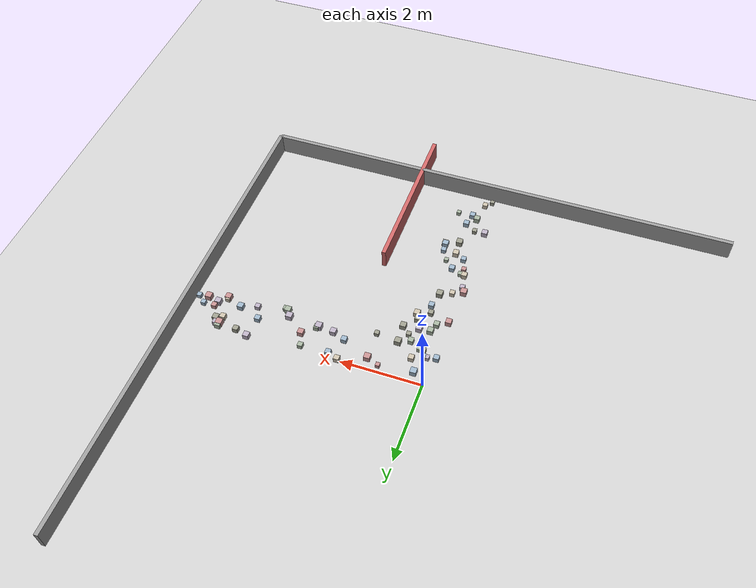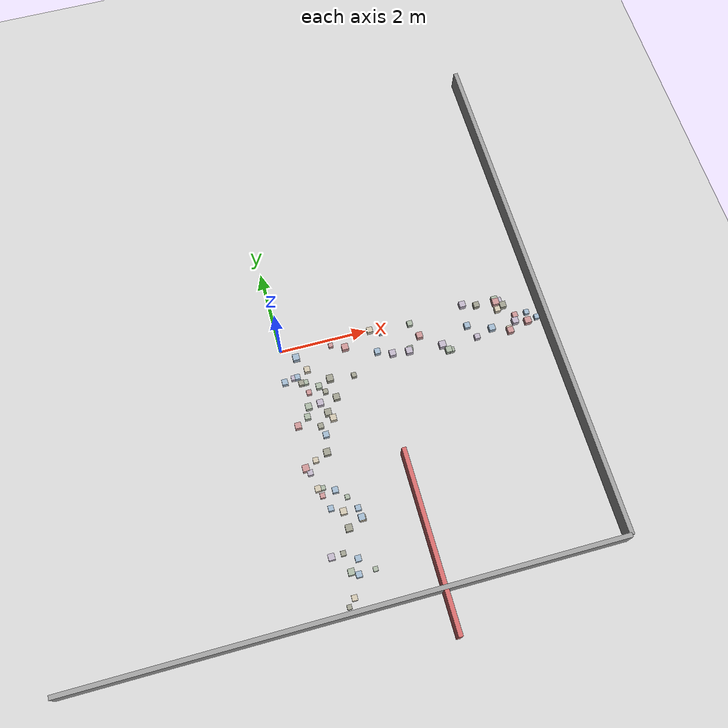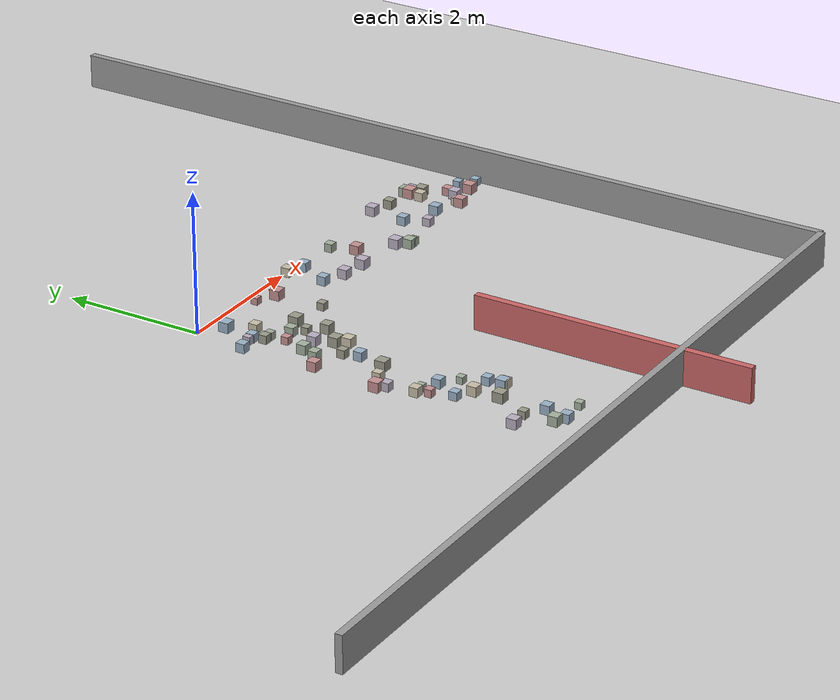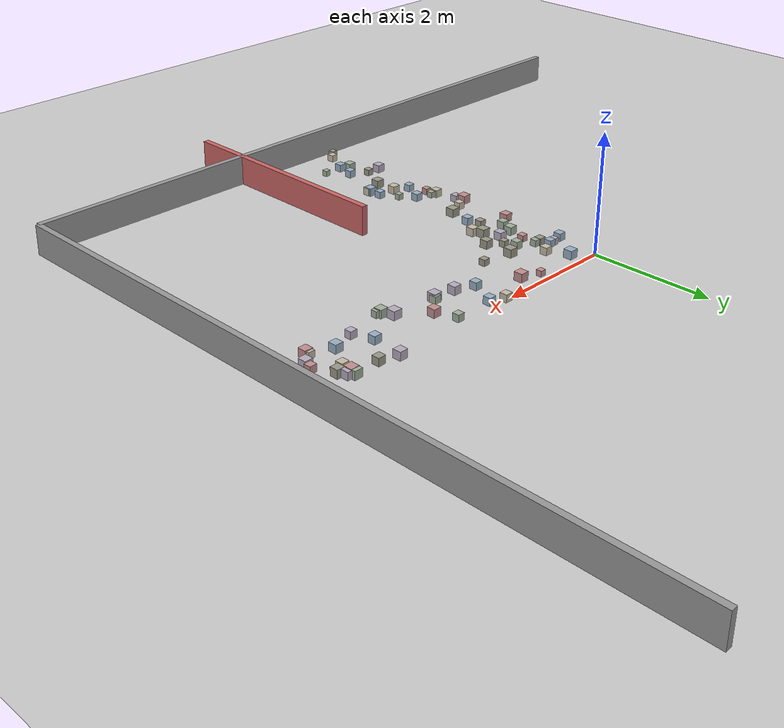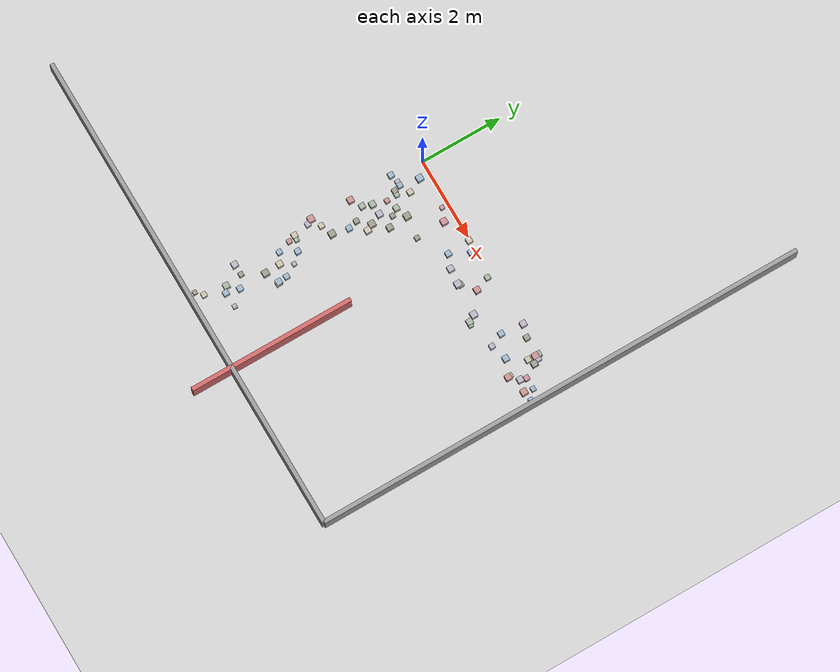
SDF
<sdf version="1.6">
 <world name="small_maze_world">
  <include><uri>model://ground_plane</uri></include>
  <include><uri>model://sun</uri></include>
  <model name="wall_south">
   <static>true</static>
   <pose>0 -6 0.25 0 0 0</pose>
   <link name="link">
    <collision name="collision"><geometry><box><size>12 0.1 0.5</size></box></geometry></collision>
    <visual name="visual">
     <geometry><box><size>12 0.1 0.5</size></box></geometry>
     <material><ambient>0.6 0.6 0.6 1</ambient></material>
    </visual>
   </link>
  </model>
  <model name="wall_east">
   <static>true</static>
   <pose>6 0 0.25 0 0 0</pose>
   <link name="link">
    <collision name="collision"><geometry><box><size>0.1 12 0.5</size></box></geometry></collision>
    <visual name="visual">
     <geometry><box><size>0.1 12 0.5</size></box></geometry>
     <material><ambient>0.6 0.6 0.6 1</ambient></material>
    </visual>
   </link>
  </model>
  <model name="maze_wall_2">
   <static>true</static>
   <pose>2 -5 0.25 0 0 1.5708</pose>
   <link name="link">
    <collision name="collision"><geometry><box><size>4 0.1 0.5</size></box></geometry></collision>
    <visual name="visual">
     <geometry><box><size>4 0.1 0.5</size></box></geometry>
     <material><ambient>0.8 0.4 0.4 1</ambient></material>
    </visual>
   </link>
  </model>
  <model name="box_3">
   <static>false</static>
   <pose>5.06 -0.29 0.05 0 0 0</pose>
   <link name="link">
    <inertial>
     <mass>0.2</mass>
     <inertia><ixx>0.001</ixx><iyy>0.001</iyy><izz>0.001</izz><ixy>0</ixy><ixz>0</ixz><iyz>0</iyz></inertia>
    </inertial>
    <collision name="collision"><geometry><box><size>0.13 0.13 0.13</size></box></geometry></collision>
    <visual name="visual">
     <geometry><box><size>0.13 0.13 0.13</size></box></geometry>
     <material><ambient>0.78 0.74 0.66 1</ambient><diffuse>0.78 0.74 0.66 1</diffuse></material>
    </visual>
   </link>
  </model>
  <model name="box_10">
   <static>false</static>
   <pose>0.47 -4.93 0.05 0 0 0</pose>
   <link name="link">
    <inertial>
     <mass>0.2</mass>
     <inertia><ixx>0.001</ixx><iyy>0.001</iyy><izz>0.001</izz><ixy>0</ixy><ixz>0</ixz><iyz>0</iyz></inertia>
    </inertial>
    <collision name="collision"><geometry><box><size>0.13 0.13 0.13</size></box></geometry></collision>
    <visual name="visual">
     <geometry><box><size>0.13 0.13 0.13</size></box></geometry>
     <material><ambient>0.6 0.69 0.77 1</ambient><diffuse>0.6 0.69 0.77 1</diffuse></material>
    </visual>
   </link>
  </model>
  <model name="box_14">
   <static>false</static>
   <pose>-0.06 -4.76 0.05 0 0 0</pose>
   <link name="link">
    <inertial>
     <mass>0.2</mass>
     <inertia><ixx>0.001</ixx><iyy>0.001</iyy><izz>0.001</izz><ixy>0</ixy><ixz>0</ixz><iyz>0</iyz></inertia>
    </inertial>
    <collision name="collision"><geometry><box><size>0.14 0.14 0.14</size></box></geometry></collision>
    <visual name="visual">
     <geometry><box><size>0.14 0.14 0.14</size></box></geometry>
     <material><ambient>0.72 0.68 0.75 1</ambient><diffuse>0.72 0.68 0.75 1</diffuse></material>
    </visual>
   </link>
  </model>
  <model name="box_21">
   <static>false</static>
   <pose>4.79 -0.7 0.05 0 0 0</pose>
   <link name="link">
    <inertial>
     <mass>0.2</mass>
     <inertia><ixx>0.001</ixx><iyy>0.001</iyy><izz>0.001</izz><ixy>0</ixy><ixz>0</ixz><iyz>0</iyz></inertia>
    </inertial>
    <collision name="collision"><geometry><box><size>0.14 0.14 0.14</size></box></geometry></collision>
    <visual name="visual">
     <geometry><box><size>0.14 0.14 0.14</size></box></geometry>
     <material><ambient>0.6 0.69 0.77 1</ambient><diffuse>0.6 0.69 0.77 1</diffuse></material>
    </visual>
   </link>
  </model>
  <model name="box_27">
   <static>false</static>
   <pose>0.14 -2.67 0.05 0 0 0</pose>
   <link name="link">
    <inertial>
     <mass>0.2</mass>
     <inertia><ixx>0.001</ixx><iyy>0.001</iyy><izz>0.001</izz><ixy>0</ixy><ixz>0</ixz><iyz>0</iyz></inertia>
    </inertial>
    <collision name="collision"><geometry><box><size>0.12 0.12 0.12</size></box></geometry></collision>
    <visual name="visual">
     <geometry><box><size>0.12 0.12 0.12</size></box></geometry>
     <material><ambient>0.78 0.74 0.66 1</ambient><diffuse>0.78 0.74 0.66 1</diffuse></material>
    </visual>
   </link>
  </model>
  <model name="box_29">
   <static>false</static>
   <pose>4.26 -0.5 0.05 0 0 0</pose>
   <link name="link">
    <inertial>
     <mass>0.2</mass>
     <inertia><ixx>0.001</ixx><iyy>0.001</iyy><izz>0.001</izz><ixy>0</ixy><ixz>0</ixz><iyz>0</iyz></inertia>
    </inertial>
    <collision name="collision"><geometry><box><size>0.13 0.13 0.13</size></box></geometry></collision>
    <visual name="visual">
     <geometry><box><size>0.13 0.13 0.13</size></box></geometry>
     <material><ambient>0.6 0.69 0.77 1</ambient><diffuse>0.6 0.69 0.77 1</diffuse></material>
    </visual>
   </link>
  </model>
  <model name="box_34">
   <static>false</static>
   <pose>0.45 -4.27 0.05 0 0 0</pose>
   <link name="link">
    <inertial>
     <mass>0.2</mass>
     <inertia><ixx>0.001</ixx><iyy>0.001</iyy><izz>0.001</izz><ixy>0</ixy><ixz>0</ixz><iyz>0</iyz></inertia>
    </inertial>
    <collision name="collision"><geometry><box><size>0.15 0.15 0.15</size></box></geometry></collision>
    <visual name="visual">
     <geometry><box><size>0.15 0.15 0.15</size></box></geometry>
     <material><ambient>0.6 0.6 0.54 1</ambient><diffuse>0.6 0.6 0.54 1</diffuse></material>
    </visual>
   </link>
  </model>
  <model name="box_56">
   <static>false</static>
   <pose>3.14 -0.45 0.05 0 0 0</pose>
   <link name="link">
    <inertial>
     <mass>0.2</mass>
     <inertia><ixx>0.001</ixx><iyy>0.001</iyy><izz>0.001</izz><ixy>0</ixy><ixz>0</ixz><iyz>0</iyz></inertia>
    </inertial>
    <collision name="collision"><geometry><box><size>0.14 0.14 0.14</size></box></geometry></collision>
    <visual name="visual">
     <geometry><box><size>0.14 0.14 0.14</size></box></geometry>
     <material><ambient>0.76 0.56 0.56 1</ambient><diffuse>0.76 0.56 0.56 1</diffuse></material>
    </visual>
   </link>
  </model>
  <model name="box_64">
   <static>false</static>
   <pose>0.26 -5.16 0.05 0 0 0</pose>
   <link name="link">
    <inertial>
     <mass>0.2</mass>
     <inertia><ixx>0.001</ixx><iyy>0.001</iyy><izz>0.001</izz><ixy>0</ixy><ixz>0</ixz><iyz>0</iyz></inertia>
    </inertial>
    <collision name="collision"><geometry><box><size>0.14 0.14 0.14</size></box></geometry></collision>
    <visual name="visual">
     <geometry><box><size>0.14 0.14 0.14</size></box></geometry>
     <material><ambient>0.64 0.69 0.62 1</ambient><diffuse>0.64 0.69 0.62 1</diffuse></material>
    </visual>
   </link>
  </model>
  <model name="box_65">
   <static>false</static>
   <pose>0.09 -3.46 0.05 0 0 0</pose>
   <link name="link">
    <inertial>
     <mass>0.2</mass>
     <inertia><ixx>0.001</ixx><iyy>0.001</iyy><izz>0.001</izz><ixy>0</ixy><ixz>0</ixz><iyz>0</iyz></inertia>
    </inertial>
    <collision name="collision"><geometry><box><size>0.11 0.11 0.11</size></box></geometry></collision>
    <visual name="visual">
     <geometry><box><size>0.11 0.11 0.11</size></box></geometry>
     <material><ambient>0.76 0.56 0.56 1</ambient><diffuse>0.76 0.56 0.56 1</diffuse></material>
    </visual>
   </link>
  </model>
  <model name="box_79">
   <static>false</static>
   <pose>5.18 -0.87 0.05 0 0 0</pose>
   <link name="link">
    <inertial>
     <mass>0.2</mass>
     <inertia><ixx>0.001</ixx><iyy>0.001</iyy><izz>0.001</izz><ixy>0</ixy><ixz>0</ixz><iyz>0</iyz></inertia>
    </inertial>
    <collision name="collision"><geometry><box><size>0.14 0.14 0.14</size></box></geometry></collision>
    <visual name="visual">
     <geometry><box><size>0.14 0.14 0.14</size></box></geometry>
     <material><ambient>0.76 0.56 0.56 1</ambient><diffuse>0.76 0.56 0.56 1</diffuse></material>
    </visual>
   </link>
  </model>
  <model name="box_92">
   <static>false</static>
   <pose>1.45 -0.99 0.05 0 0 0</pose>
   <link name="link">
    <inertial>
     <mass>0.2</mass>
     <inertia><ixx>0.001</ixx><iyy>0.001</iyy><izz>0.001</izz><ixy>0</ixy><ixz>0</ixz><iyz>0</iyz></inertia>
    </inertial>
    <collision name="collision"><geometry><box><size>0.11 0.11 0.11</size></box></geometry></collision>
    <visual name="visual">
     <geometry><box><size>0.11 0.11 0.11</size></box></geometry>
     <material><ambient>0.6 0.6 0.54 1</ambient><diffuse>0.6 0.6 0.54 1</diffuse></material>
    </visual>
   </link>
  </model>
  <model name="box_93">
   <static>false</static>
   <pose>0.43 -3.9 0.05 0 0 0</pose>
   <link name="link">
    <inertial>
     <mass>0.2</mass>
     <inertia><ixx>0.001</ixx><iyy>0.001</iyy><izz>0.001</izz><ixy>0</ixy><ixz>0</ixz><iyz>0</iyz></inertia>
    </inertial>
    <collision name="collision"><geometry><box><size>0.14 0.14 0.14</size></box></geometry></collision>
    <visual name="visual">
     <geometry><box><size>0.14 0.14 0.14</size></box></geometry>
     <material><ambient>0.78 0.74 0.66 1</ambient><diffuse>0.78 0.74 0.66 1</diffuse></material>
    </visual>
   </link>
  </model>
  <model name="box_95">
   <static>false</static>
   <pose>-0.08 -0.76 0.05 0 0 0</pose>
   <link name="link">
    <inertial>
     <mass>0.2</mass>
     <inertia><ixx>0.001</ixx><iyy>0.001</iyy><izz>0.001</izz><ixy>0</ixy><ixz>0</ixz><iyz>0</iyz></inertia>
    </inertial>
    <collision name="collision"><geometry><box><size>0.13 0.13 0.13</size></box></geometry></collision>
    <visual name="visual">
     <geometry><box><size>0.13 0.13 0.13</size></box></geometry>
     <material><ambient>0.6 0.69 0.77 1</ambient><diffuse>0.6 0.69 0.77 1</diffuse></material>
    </visual>
   </link>
  </model>
  <model name="box_99">
   <static>false</static>
   <pose>0.67 -1.69 0.05 0 0 0</pose>
   <link name="link">
    <inertial>
     <mass>0.2</mass>
     <inertia><ixx>0.001</ixx><iyy>0.001</iyy><izz>0.001</izz><ixy>0</ixy><ixz>0</ixz><iyz>0</iyz></inertia>
    </inertial>
    <collision name="collision"><geometry><box><size>0.15 0.15 0.15</size></box></geometry></collision>
    <visual name="visual">
     <geometry><box><size>0.15 0.15 0.15</size></box></geometry>
     <material><ambient>0.6 0.6 0.54 1</ambient><diffuse>0.6 0.6 0.54 1</diffuse></material>
    </visual>
   </link>
  </model>
  <model name="box_127">
   <static>false</static>
   <pose>0.38 -1.13 0.05 0 0 0</pose>
   <link name="link">
    <inertial>
     <mass>0.2</mass>
     <inertia><ixx>0.001</ixx><iyy>0.001</iyy><izz>0.001</izz><ixy>0</ixy><ixz>0</ixz><iyz>0</iyz></inertia>
    </inertial>
    <collision name="collision"><geometry><box><size>0.11 0.11 0.11</size></box></geometry></collision>
    <visual name="visual">
     <geometry><box><size>0.11 0.11 0.11</size></box></geometry>
     <material><ambient>0.76 0.56 0.56 1</ambient><diffuse>0.76 0.56 0.56 1</diffuse></material>
    </visual>
   </link>
  </model>
  <model name="box_133">
   <static>false</static>
   <pose>3.01 -0.11 0.05 0 0 0</pose>
   <link name="link">
    <inertial>
     <mass>0.2</mass>
     <inertia><ixx>0.001</ixx><iyy>0.001</iyy><izz>0.001</izz><ixy>0</ixy><ixz>0</ixz><iyz>0</iyz></inertia>
    </inertial>
    <collision name="collision"><geometry><box><size>0.12 0.12 0.12</size></box></geometry></collision>
    <visual name="visual">
     <geometry><box><size>0.12 0.12 0.12</size></box></geometry>
     <material><ambient>0.64 0.69 0.62 1</ambient><diffuse>0.64 0.69 0.62 1</diffuse></material>
    </visual>
   </link>
  </model>
  <model name="box_135">
   <static>false</static>
   <pose>3.75 -0.98 0.05 0 0 0</pose>
   <link name="link">
    <inertial>
     <mass>0.2</mass>
     <inertia><ixx>0.001</ixx><iyy>0.001</iyy><izz>0.001</izz><ixy>0</ixy><ixz>0</ixz><iyz>0</iyz></inertia>
    </inertial>
    <collision name="collision"><geometry><box><size>0.11 0.11 0.11</size></box></geometry></collision>
    <visual name="visual">
     <geometry><box><size>0.11 0.11 0.11</size></box></geometry>
     <material><ambient>0.64 0.69 0.62 1</ambient><diffuse>0.64 0.69 0.62 1</diffuse></material>
    </visual>
   </link>
  </model>
  <model name="box_143">
   <static>false</static>
   <pose>0.94 -1.39 0.05 0 0 0</pose>
   <link name="link">
    <inertial>
     <mass>0.2</mass>
     <inertia><ixx>0.001</ixx><iyy>0.001</iyy><izz>0.001</izz><ixy>0</ixy><ixz>0</ixz><iyz>0</iyz></inertia>
    </inertial>
    <collision name="collision"><geometry><box><size>0.14 0.14 0.14</size></box></geometry></collision>
    <visual name="visual">
     <geometry><box><size>0.14 0.14 0.14</size></box></geometry>
     <material><ambient>0.6 0.6 0.54 1</ambient><diffuse>0.6 0.6 0.54 1</diffuse></material>
    </visual>
   </link>
  </model>
  <model name="box_149">
   <static>false</static>
   <pose>-0.04 -1.82 0.05 0 0 0</pose>
   <link name="link">
    <inertial>
     <mass>0.2</mass>
     <inertia><ixx>0.001</ixx><iyy>0.001</iyy><izz>0.001</izz><ixy>0</ixy><ixz>0</ixz><iyz>0</iyz></inertia>
    </inertial>
    <collision name="collision"><geometry><box><size>0.14 0.14 0.14</size></box></geometry></collision>
    <visual name="visual">
     <geometry><box><size>0.14 0.14 0.14</size></box></geometry>
     <material><ambient>0.76 0.56 0.56 1</ambient><diffuse>0.76 0.56 0.56 1</diffuse></material>
    </visual>
   </link>
  </model>
  <model name="box_164">
   <static>false</static>
   <pose>5.07 -0.04 0.05 0 0 0</pose>
   <link name="link">
    <inertial>
     <mass>0.2</mass>
     <inertia><ixx>0.001</ixx><iyy>0.001</iyy><izz>0.001</izz><ixy>0</ixy><ixz>0</ixz><iyz>0</iyz></inertia>
    </inertial>
    <collision name="collision"><geometry><box><size>0.14 0.14 0.14</size></box></geometry></collision>
    <visual name="visual">
     <geometry><box><size>0.14 0.14 0.14</size></box></geometry>
     <material><ambient>0.64 0.69 0.62 1</ambient><diffuse>0.64 0.69 0.62 1</diffuse></material>
    </visual>
   </link>
  </model>
  <model name="box_169">
   <static>false</static>
   <pose>4.62 -0.06 0.05 0 0 0</pose>
   <link name="link">
    <inertial>
     <mass>0.2</mass>
     <inertia><ixx>0.001</ixx><iyy>0.001</iyy><izz>0.001</izz><ixy>0</ixy><ixz>0</ixz><iyz>0</iyz></inertia>
    </inertial>
    <collision name="collision"><geometry><box><size>0.13 0.13 0.13</size></box></geometry></collision>
    <visual name="visual">
     <geometry><box><size>0.13 0.13 0.13</size></box></geometry>
     <material><ambient>0.6 0.6 0.54 1</ambient><diffuse>0.6 0.6 0.54 1</diffuse></material>
    </visual>
   </link>
  </model>
  <model name="box_170">
   <static>false</static>
   <pose>0.77 -4.12 0.05 0 0 0</pose>
   <link name="link">
    <inertial>
     <mass>0.2</mass>
     <inertia><ixx>0.001</ixx><iyy>0.001</iyy><izz>0.001</izz><ixy>0</ixy><ixz>0</ixz><iyz>0</iyz></inertia>
    </inertial>
    <collision name="collision"><geometry><box><size>0.14 0.14 0.14</size></box></geometry></collision>
    <visual name="visual">
     <geometry><box><size>0.14 0.14 0.14</size></box></geometry>
     <material><ambient>0.6 0.69 0.77 1</ambient><diffuse>0.6 0.69 0.77 1</diffuse></material>
    </visual>
   </link>
  </model>
  <model name="box_173">
   <static>false</static>
   <pose>0.91 -0.93 0.05 0 0 0</pose>
   <link name="link">
    <inertial>
     <mass>0.2</mass>
     <inertia><ixx>0.001</ixx><iyy>0.001</iyy><izz>0.001</izz><ixy>0</ixy><ixz>0</ixz><iyz>0</iyz></inertia>
    </inertial>
    <collision name="collision"><geometry><box><size>0.15 0.15 0.15</size></box></geometry></collision>
    <visual name="visual">
     <geometry><box><size>0.15 0.15 0.15</size></box></geometry>
     <material><ambient>0.6 0.6 0.54 1</ambient><diffuse>0.6 0.6 0.54 1</diffuse></material>
    </visual>
   </link>
  </model>
  <model name="box_179">
   <static>false</static>
   <pose>0.37 -0.88 0.05 0 0 0</pose>
   <link name="link">
    <inertial>
     <mass>0.2</mass>
     <inertia><ixx>0.001</ixx><iyy>0.001</iyy><izz>0.001</izz><ixy>0</ixy><ixz>0</ixz><iyz>0</iyz></inertia>
    </inertial>
    <collision name="collision"><geometry><box><size>0.11 0.11 0.11</size></box></geometry></collision>
    <visual name="visual">
     <geometry><box><size>0.11 0.11 0.11</size></box></geometry>
     <material><ambient>0.64 0.69 0.62 1</ambient><diffuse>0.64 0.69 0.62 1</diffuse></material>
    </visual>
   </link>
  </model>
  <model name="box_182">
   <static>false</static>
   <pose>5.36 -0.67 0.05 0 0 0</pose>
   <link name="link">
    <inertial>
     <mass>0.2</mass>
     <inertia><ixx>0.001</ixx><iyy>0.001</iyy><izz>0.001</izz><ixy>0</ixy><ixz>0</ixz><iyz>0</iyz></inertia>
    </inertial>
    <collision name="collision"><geometry><box><size>0.14 0.14 0.14</size></box></geometry></collision>
    <visual name="visual">
     <geometry><box><size>0.14 0.14 0.14</size></box></geometry>
     <material><ambient>0.72 0.68 0.75 1</ambient><diffuse>0.72 0.68 0.75 1</diffuse></material>
    </visual>
   </link>
  </model>
  <model name="box_187">
   <static>false</static>
   <pose>2.81 -0.75 0.05 0 0 0</pose>
   <link name="link">
    <inertial>
     <mass>0.2</mass>
     <inertia><ixx>0.001</ixx><iyy>0.001</iyy><izz>0.001</izz><ixy>0</ixy><ixz>0</ixz><iyz>0</iyz></inertia>
    </inertial>
    <collision name="collision"><geometry><box><size>0.15 0.15 0.15</size></box></geometry></collision>
    <visual name="visual">
     <geometry><box><size>0.15 0.15 0.15</size></box></geometry>
     <material><ambient>0.72 0.68 0.75 1</ambient><diffuse>0.72 0.68 0.75 1</diffuse></material>
    </visual>
   </link>
  </model>
  <model name="box_191">
   <static>false</static>
   <pose>0.13 -0.71 0.05 0 0 0</pose>
   <link name="link">
    <inertial>
     <mass>0.2</mass>
     <inertia><ixx>0.001</ixx><iyy>0.001</iyy><izz>0.001</izz><ixy>0</ixy><ixz>0</ixz><iyz>0</iyz></inertia>
    </inertial>
    <collision name="collision"><geometry><box><size>0.11 0.11 0.11</size></box></geometry></collision>
    <visual name="visual">
     <geometry><box><size>0.11 0.11 0.11</size></box></geometry>
     <material><ambient>0.72 0.68 0.75 1</ambient><diffuse>0.72 0.68 0.75 1</diffuse></material>
    </visual>
   </link>
  </model>
  <model name="box_197">
   <static>false</static>
   <pose>0.5 -2.17 0.05 0 0 0</pose>
   <link name="link">
    <inertial>
     <mass>0.2</mass>
     <inertia><ixx>0.001</ixx><iyy>0.001</iyy><izz>0.001</izz><ixy>0</ixy><ixz>0</ixz><iyz>0</iyz></inertia>
    </inertial>
    <collision name="collision"><geometry><box><size>0.13 0.13 0.13</size></box></geometry></collision>
    <visual name="visual">
     <geometry><box><size>0.13 0.13 0.13</size></box></geometry>
     <material><ambient>0.6 0.69 0.77 1</ambient><diffuse>0.6 0.69 0.77 1</diffuse></material>
    </visual>
   </link>
  </model>
  <model name="box_204">
   <static>false</static>
   <pose>1.13 -0.16 0.05 0 0 0</pose>
   <link name="link">
    <inertial>
     <mass>0.2</mass>
     <inertia><ixx>0.001</ixx><iyy>0.001</iyy><izz>0.001</izz><ixy>0</ixy><ixz>0</ixz><iyz>0</iyz></inertia>
    </inertial>
    <collision name="collision"><geometry><box><size>0.1 0.1 0.1</size></box></geometry></collision>
    <visual name="visual">
     <geometry><box><size>0.1 0.1 0.1</size></box></geometry>
     <material><ambient>0.76 0.56 0.56 1</ambient><diffuse>0.76 0.56 0.56 1</diffuse></material>
    </visual>
   </link>
  </model>
  <model name="box_222">
   <static>false</static>
   <pose>0.19 -3.77 0.05 0 0 0</pose>
   <link name="link">
    <inertial>
     <mass>0.2</mass>
     <inertia><ixx>0.001</ixx><iyy>0.001</iyy><izz>0.001</izz><ixy>0</ixy><ixz>0</ixz><iyz>0</iyz></inertia>
    </inertial>
    <collision name="collision"><geometry><box><size>0.12 0.12 0.12</size></box></geometry></collision>
    <visual name="visual">
     <geometry><box><size>0.12 0.12 0.12</size></box></geometry>
     <material><ambient>0.6 0.69 0.77 1</ambient><diffuse>0.6 0.69 0.77 1</diffuse></material>
    </visual>
   </link>
  </model>
  <model name="box_225">
   <static>false</static>
   <pose>0.21 -1.67 0.05 0 0 0</pose>
   <link name="link">
    <inertial>
     <mass>0.2</mass>
     <inertia><ixx>0.001</ixx><iyy>0.001</iyy><izz>0.001</izz><ixy>0</ixy><ixz>0</ixz><iyz>0</iyz></inertia>
    </inertial>
    <collision name="collision"><geometry><box><size>0.13 0.13 0.13</size></box></geometry></collision>
    <visual name="visual">
     <geometry><box><size>0.13 0.13 0.13</size></box></geometry>
     <material><ambient>0.64 0.69 0.62 1</ambient><diffuse>0.64 0.69 0.62 1</diffuse></material>
    </visual>
   </link>
  </model>
  <model name="box_230">
   <static>false</static>
   <pose>5.64 -0.74 0.05 0 0 0</pose>
   <link name="link">
    <inertial>
     <mass>0.2</mass>
     <inertia><ixx>0.001</ixx><iyy>0.001</iyy><izz>0.001</izz><ixy>0</ixy><ixz>0</ixz><iyz>0</iyz></inertia>
    </inertial>
    <collision name="collision"><geometry><box><size>0.15 0.15 0.15</size></box></geometry></collision>
    <visual name="visual">
     <geometry><box><size>0.15 0.15 0.15</size></box></geometry>
     <material><ambient>0.76 0.56 0.56 1</ambient><diffuse>0.76 0.56 0.56 1</diffuse></material>
    </visual>
   </link>
  </model>
  <model name="box_231">
   <static>false</static>
   <pose>0.75 -3.91 0.05 0 0 0</pose>
   <link name="link">
    <inertial>
     <mass>0.2</mass>
     <inertia><ixx>0.001</ixx><iyy>0.001</iyy><izz>0.001</izz><ixy>0</ixy><ixz>0</ixz><iyz>0</iyz></inertia>
    </inertial>
    <collision name="collision"><geometry><box><size>0.12 0.12 0.12</size></box></geometry></collision>
    <visual name="visual">
     <geometry><box><size>0.12 0.12 0.12</size></box></geometry>
     <material><ambient>0.6 0.69 0.77 1</ambient><diffuse>0.6 0.69 0.77 1</diffuse></material>
    </visual>
   </link>
  </model>
  <model name="box_236">
   <static>false</static>
   <pose>0.63 -1.04 0.05 0 0 0</pose>
   <link name="link">
    <inertial>
     <mass>0.2</mass>
     <inertia><ixx>0.001</ixx><iyy>0.001</iyy><izz>0.001</izz><ixy>0</ixy><ixz>0</ixz><iyz>0</iyz></inertia>
    </inertial>
    <collision name="collision"><geometry><box><size>0.13 0.13 0.13</size></box></geometry></collision>
    <visual name="visual">
     <geometry><box><size>0.13 0.13 0.13</size></box></geometry>
     <material><ambient>0.64 0.69 0.62 1</ambient><diffuse>0.64 0.69 0.62 1</diffuse></material>
    </visual>
   </link>
  </model>
  <model name="box_239">
   <static>false</static>
   <pose>0.19 -5.68 0.05 0 0 0</pose>
   <link name="link">
    <inertial>
     <mass>0.2</mass>
     <inertia><ixx>0.001</ixx><iyy>0.001</iyy><izz>0.001</izz><ixy>0</ixy><ixz>0</ixz><iyz>0</iyz></inertia>
    </inertial>
    <collision name="collision"><geometry><box><size>0.12 0.12 0.12</size></box></geometry></collision>
    <visual name="visual">
     <geometry><box><size>0.12 0.12 0.12</size></box></geometry>
     <material><ambient>0.78 0.74 0.66 1</ambient><diffuse>0.78 0.74 0.66 1</diffuse></material>
    </visual>
   </link>
  </model>
  <model name="box_242">
   <static>false</static>
   <pose>-0.04 -2.91 0.05 0 0 0</pose>
   <link name="link">
    <inertial>
     <mass>0.2</mass>
     <inertia><ixx>0.001</ixx><iyy>0.001</iyy><izz>0.001</izz><ixy>0</ixy><ixz>0</ixz><iyz>0</iyz></inertia>
    </inertial>
    <collision name="collision"><geometry><box><size>0.12 0.12 0.12</size></box></geometry></collision>
    <visual name="visual">
     <geometry><box><size>0.12 0.12 0.12</size></box></geometry>
     <material><ambient>0.72 0.68 0.75 1</ambient><diffuse>0.72 0.68 0.75 1</diffuse></material>
    </visual>
   </link>
  </model>
  <model name="box_243">
   <static>false</static>
   <pose>2.11 -0.58 0.05 0 0 0</pose>
   <link name="link">
    <inertial>
     <mass>0.2</mass>
     <inertia><ixx>0.001</ixx><iyy>0.001</iyy><izz>0.001</izz><ixy>0</ixy><ixz>0</ixz><iyz>0</iyz></inertia>
    </inertial>
    <collision name="collision"><geometry><box><size>0.13 0.13 0.13</size></box></geometry></collision>
    <visual name="visual">
     <geometry><box><size>0.13 0.13 0.13</size></box></geometry>
     <material><ambient>0.6 0.69 0.77 1</ambient><diffuse>0.6 0.69 0.77 1</diffuse></material>
    </visual>
   </link>
  </model>
  <model name="box_258">
   <static>false</static>
   <pose>0.79 -4.14 0.05 0 0 0</pose>
   <link name="link">
    <inertial>
     <mass>0.2</mass>
     <inertia><ixx>0.001</ixx><iyy>0.001</iyy><izz>0.001</izz><ixy>0</ixy><ixz>0</ixz><iyz>0</iyz></inertia>
    </inertial>
    <collision name="collision"><geometry><box><size>0.13 0.13 0.13</size></box></geometry></collision>
    <visual name="visual">
     <geometry><box><size>0.13 0.13 0.13</size></box></geometry>
     <material><ambient>0.78 0.74 0.66 1</ambient><diffuse>0.78 0.74 0.66 1</diffuse></material>
    </visual>
   </link>
  </model>
  <model name="box_260">
   <static>false</static>
   <pose>4.4 -0.82 0.05 0 0 0</pose>
   <link name="link">
    <inertial>
     <mass>0.2</mass>
     <inertia><ixx>0.001</ixx><iyy>0.001</iyy><izz>0.001</izz><ixy>0</ixy><ixz>0</ixz><iyz>0</iyz></inertia>
    </inertial>
    <collision name="collision"><geometry><box><size>0.12 0.12 0.12</size></box></geometry></collision>
    <visual name="visual">
     <geometry><box><size>0.12 0.12 0.12</size></box></geometry>
     <material><ambient>0.72 0.68 0.75 1</ambient><diffuse>0.72 0.68 0.75 1</diffuse></material>
    </visual>
   </link>
  </model>
  <model name="box_265">
   <static>false</static>
   <pose>5.07 -0.11 0.05 0 0 0</pose>
   <link name="link">
    <inertial>
     <mass>0.2</mass>
     <inertia><ixx>0.001</ixx><iyy>0.001</iyy><izz>0.001</izz><ixy>0</ixy><ixz>0</ixz><iyz>0</iyz></inertia>
    </inertial>
    <collision name="collision"><geometry><box><size>0.15 0.15 0.15</size></box></geometry></collision>
    <visual name="visual">
     <geometry><box><size>0.15 0.15 0.15</size></box></geometry>
     <material><ambient>0.76 0.56 0.56 1</ambient><diffuse>0.76 0.56 0.56 1</diffuse></material>
    </visual>
   </link>
  </model>
  <model name="box_269">
   <static>false</static>
   <pose>3.58 -0.8 0.05 0 0 0</pose>
   <link name="link">
    <inertial>
     <mass>0.2</mass>
     <inertia><ixx>0.001</ixx><iyy>0.001</iyy><izz>0.001</izz><ixy>0</ixy><ixz>0</ixz><iyz>0</iyz></inertia>
    </inertial>
    <collision name="collision"><geometry><box><size>0.15 0.15 0.15</size></box></geometry></collision>
    <visual name="visual">
     <geometry><box><size>0.15 0.15 0.15</size></box></geometry>
     <material><ambient>0.72 0.68 0.75 1</ambient><diffuse>0.72 0.68 0.75 1</diffuse></material>
    </visual>
   </link>
  </model>
  <model name="box_271">
   <static>false</static>
   <pose>0.38 -3.41 0.05 0 0 0</pose>
   <link name="link">
    <inertial>
     <mass>0.2</mass>
     <inertia><ixx>0.001</ixx><iyy>0.001</iyy><izz>0.001</izz><ixy>0</ixy><ixz>0</ixz><iyz>0</iyz></inertia>
    </inertial>
    <collision name="collision"><geometry><box><size>0.13 0.13 0.13</size></box></geometry></collision>
    <visual name="visual">
     <geometry><box><size>0.13 0.13 0.13</size></box></geometry>
     <material><ambient>0.6 0.69 0.77 1</ambient><diffuse>0.6 0.69 0.77 1</diffuse></material>
    </visual>
   </link>
  </model>
  <model name="box_273">
   <static>false</static>
   <pose>0.74 -1.2 0.05 0 0 0</pose>
   <link name="link">
    <inertial>
     <mass>0.2</mass>
     <inertia><ixx>0.001</ixx><iyy>0.001</iyy><izz>0.001</izz><ixy>0</ixy><ixz>0</ixz><iyz>0</iyz></inertia>
    </inertial>
    <collision name="collision"><geometry><box><size>0.11 0.11 0.11</size></box></geometry></collision>
    <visual name="visual">
     <geometry><box><size>0.11 0.11 0.11</size></box></geometry>
     <material><ambient>0.6 0.6 0.54 1</ambient><diffuse>0.6 0.6 0.54 1</diffuse></material>
    </visual>
   </link>
  </model>
  <model name="box_275">
   <static>false</static>
   <pose>2.85 -0.7 0.05 0 0 0</pose>
   <link name="link">
    <inertial>
     <mass>0.2</mass>
     <inertia><ixx>0.001</ixx><iyy>0.001</iyy><izz>0.001</izz><ixy>0</ixy><ixz>0</ixz><iyz>0</iyz></inertia>
    </inertial>
    <collision name="collision"><geometry><box><size>0.12 0.12 0.12</size></box></geometry></collision>
    <visual name="visual">
     <geometry><box><size>0.12 0.12 0.12</size></box></geometry>
     <material><ambient>0.64 0.69 0.62 1</ambient><diffuse>0.64 0.69 0.62 1</diffuse></material>
    </visual>
   </link>
  </model>
  <model name="box_276">
   <static>false</static>
   <pose>5.87 -0.7 0.05 0 0 0</pose>
   <link name="link">
    <inertial>
     <mass>0.2</mass>
     <inertia><ixx>0.001</ixx><iyy>0.001</iyy><izz>0.001</izz><ixy>0</ixy><ixz>0</ixz><iyz>0</iyz></inertia>
    </inertial>
    <collision name="collision"><geometry><box><size>0.11 0.11 0.11</size></box></geometry></collision>
    <visual name="visual">
     <geometry><box><size>0.11 0.11 0.11</size></box></geometry>
     <material><ambient>0.6 0.69 0.77 1</ambient><diffuse>0.6 0.69 0.77 1</diffuse></material>
    </visual>
   </link>
  </model>
  <model name="box_277">
   <static>false</static>
   <pose>0.2 -4.75 0.05 0 0 0</pose>
   <link name="link">
    <inertial>
     <mass>0.2</mass>
     <inertia><ixx>0.001</ixx><iyy>0.001</iyy><izz>0.001</izz><ixy>0</ixy><ixz>0</ixz><iyz>0</iyz></inertia>
    </inertial>
    <collision name="collision"><geometry><box><size>0.11 0.11 0.11</size></box></geometry></collision>
    <visual name="visual">
     <geometry><box><size>0.11 0.11 0.11</size></box></geometry>
     <material><ambient>0.6 0.6 0.54 1</ambient><diffuse>0.6 0.6 0.54 1</diffuse></material>
    </visual>
   </link>
  </model>
  <model name="box_279">
   <static>false</static>
   <pose>0.4 -5.25 0.05 0 0 0</pose>
   <link name="link">
    <inertial>
     <mass>0.2</mass>
     <inertia><ixx>0.001</ixx><iyy>0.001</iyy><izz>0.001</izz><ixy>0</ixy><ixz>0</ixz><iyz>0</iyz></inertia>
    </inertial>
    <collision name="collision"><geometry><box><size>0.13 0.13 0.13</size></box></geometry></collision>
    <visual name="visual">
     <geometry><box><size>0.13 0.13 0.13</size></box></geometry>
     <material><ambient>0.6 0.69 0.77 1</ambient><diffuse>0.6 0.69 0.77 1</diffuse></material>
    </visual>
   </link>
  </model>
  <model name="box_283">
   <static>false</static>
   <pose>5.21 -0.22 0.05 0 0 0</pose>
   <link name="link">
    <inertial>
     <mass>0.2</mass>
     <inertia><ixx>0.001</ixx><iyy>0.001</iyy><izz>0.001</izz><ixy>0</ixy><ixz>0</ixz><iyz>0</iyz></inertia>
    </inertial>
    <collision name="collision"><geometry><box><size>0.14 0.14 0.14</size></box></geometry></collision>
    <visual name="visual">
     <geometry><box><size>0.14 0.14 0.14</size></box></geometry>
     <material><ambient>0.6 0.6 0.54 1</ambient><diffuse>0.6 0.6 0.54 1</diffuse></material>
    </visual>
   </link>
  </model>
  <model name="box_298">
   <static>false</static>
   <pose>0.03 -3.29 0.05 0 0 0</pose>
   <link name="link">
    <inertial>
     <mass>0.2</mass>
     <inertia><ixx>0.001</ixx><iyy>0.001</iyy><izz>0.001</izz><ixy>0</ixy><ixz>0</ixz><iyz>0</iyz></inertia>
    </inertial>
    <collision name="collision"><geometry><box><size>0.13 0.13 0.13</size></box></geometry></collision>
    <visual name="visual">
     <geometry><box><size>0.13 0.13 0.13</size></box></geometry>
     <material><ambient>0.78 0.74 0.66 1</ambient><diffuse>0.78 0.74 0.66 1</diffuse></material>
    </visual>
   </link>
  </model>
  <model name="box_302">
   <static>false</static>
   <pose>3.68 -0.96 0.05 0 0 0</pose>
   <link name="link">
    <inertial>
     <mass>0.2</mass>
     <inertia><ixx>0.001</ixx><iyy>0.001</iyy><izz>0.001</izz><ixy>0</ixy><ixz>0</ixz><iyz>0</iyz></inertia>
    </inertial>
    <collision name="collision"><geometry><box><size>0.14 0.14 0.14</size></box></geometry></collision>
    <visual name="visual">
     <geometry><box><size>0.14 0.14 0.14</size></box></geometry>
     <material><ambient>0.64 0.69 0.62 1</ambient><diffuse>0.64 0.69 0.62 1</diffuse></material>
    </visual>
   </link>
  </model>
  <model name="box_307">
   <static>false</static>
   <pose>0.3 -0.25 0.05 0 0 0</pose>
   <link name="link">
    <inertial>
     <mass>0.2</mass>
     <inertia><ixx>0.001</ixx><iyy>0.001</iyy><izz>0.001</izz><ixy>0</ixy><ixz>0</ixz><iyz>0</iyz></inertia>
    </inertial>
    <collision name="collision"><geometry><box><size>0.15 0.15 0.15</size></box></geometry></collision>
    <visual name="visual">
     <geometry><box><size>0.15 0.15 0.15</size></box></geometry>
     <material><ambient>0.6 0.69 0.77 1</ambient><diffuse>0.6 0.69 0.77 1</diffuse></material>
    </visual>
   </link>
  </model>
  <model name="box_309">
   <static>false</static>
   <pose>0.59 -3.62 0.05 0 0 0</pose>
   <link name="link">
    <inertial>
     <mass>0.2</mass>
     <inertia><ixx>0.001</ixx><iyy>0.001</iyy><izz>0.001</izz><ixy>0</ixy><ixz>0</ixz><iyz>0</iyz></inertia>
    </inertial>
    <collision name="collision"><geometry><box><size>0.1 0.1 0.1</size></box></geometry></collision>
    <visual name="visual">
     <geometry><box><size>0.1 0.1 0.1</size></box></geometry>
     <material><ambient>0.64 0.69 0.62 1</ambient><diffuse>0.64 0.69 0.62 1</diffuse></material>
    </visual>
   </link>
  </model>
  <model name="box_310">
   <static>false</static>
   <pose>0.75 -1.84 0.05 0 0 0</pose>
   <link name="link">
    <inertial>
     <mass>0.2</mass>
     <inertia><ixx>0.001</ixx><iyy>0.001</iyy><izz>0.001</izz><ixy>0</ixy><ixz>0</ixz><iyz>0</iyz></inertia>
    </inertial>
    <collision name="collision"><geometry><box><size>0.14 0.14 0.14</size></box></geometry></collision>
    <visual name="visual">
     <geometry><box><size>0.14 0.14 0.14</size></box></geometry>
     <material><ambient>0.78 0.74 0.66 1</ambient><diffuse>0.78 0.74 0.66 1</diffuse></material>
    </visual>
   </link>
  </model>
  <model name="box_328">
   <static>false</static>
   <pose>5.68 -0.53 0.05 0 0 0</pose>
   <link name="link">
    <inertial>
     <mass>0.2</mass>
     <inertia><ixx>0.001</ixx><iyy>0.001</iyy><izz>0.001</izz><ixy>0</ixy><ixz>0</ixz><iyz>0</iyz></inertia>
    </inertial>
    <collision name="collision"><geometry><box><size>0.11 0.11 0.11</size></box></geometry></collision>
    <visual name="visual">
     <geometry><box><size>0.11 0.11 0.11</size></box></geometry>
     <material><ambient>0.6 0.69 0.77 1</ambient><diffuse>0.6 0.69 0.77 1</diffuse></material>
    </visual>
   </link>
  </model>
  <model name="box_332">
   <static>false</static>
   <pose>0.29 -1.45 0.05 0 0 0</pose>
   <link name="link">
    <inertial>
     <mass>0.2</mass>
     <inertia><ixx>0.001</ixx><iyy>0.001</iyy><izz>0.001</izz><ixy>0</ixy><ixz>0</ixz><iyz>0</iyz></inertia>
    </inertial>
    <collision name="collision"><geometry><box><size>0.14 0.14 0.14</size></box></geometry></collision>
    <visual name="visual">
     <geometry><box><size>0.14 0.14 0.14</size></box></geometry>
     <material><ambient>0.64 0.69 0.62 1</ambient><diffuse>0.64 0.69 0.62 1</diffuse></material>
    </visual>
   </link>
  </model>
  <model name="box_334">
   <static>false</static>
   <pose>2.43 -0.71 0.05 0 0 0</pose>
   <link name="link">
    <inertial>
     <mass>0.2</mass>
     <inertia><ixx>0.001</ixx><iyy>0.001</iyy><izz>0.001</izz><ixy>0</ixy><ixz>0</ixz><iyz>0</iyz></inertia>
    </inertial>
    <collision name="collision"><geometry><box><size>0.14 0.14 0.14</size></box></geometry></collision>
    <visual name="visual">
     <geometry><box><size>0.14 0.14 0.14</size></box></geometry>
     <material><ambient>0.72 0.68 0.75 1</ambient><diffuse>0.72 0.68 0.75 1</diffuse></material>
    </visual>
   </link>
  </model>
  <model name="box_341">
   <static>false</static>
   <pose>-0.11 -2.79 0.05 0 0 0</pose>
   <link name="link">
    <inertial>
     <mass>0.2</mass>
     <inertia><ixx>0.001</ixx><iyy>0.001</iyy><izz>0.001</izz><ixy>0</ixy><ixz>0</ixz><iyz>0</iyz></inertia>
    </inertial>
    <collision name="collision"><geometry><box><size>0.15 0.15 0.15</size></box></geometry></collision>
    <visual name="visual">
     <geometry><box><size>0.15 0.15 0.15</size></box></geometry>
     <material><ambient>0.76 0.56 0.56 1</ambient><diffuse>0.76 0.56 0.56 1</diffuse></material>
    </visual>
   </link>
  </model>
  <model name="box_348">
   <static>false</static>
   <pose>4.31 0.03 0.05 0 0 0</pose>
   <link name="link">
    <inertial>
     <mass>0.2</mass>
     <inertia><ixx>0.001</ixx><iyy>0.001</iyy><izz>0.001</izz><ixy>0</ixy><ixz>0</ixz><iyz>0</iyz></inertia>
    </inertial>
    <collision name="collision"><geometry><box><size>0.14 0.14 0.14</size></box></geometry></collision>
    <visual name="visual">
     <geometry><box><size>0.14 0.14 0.14</size></box></geometry>
     <material><ambient>0.72 0.68 0.75 1</ambient><diffuse>0.72 0.68 0.75 1</diffuse></material>
    </visual>
   </link>
  </model>
  <model name="box_359">
   <static>false</static>
   <pose>0.14 -3.3 0.05 0 0 0</pose>
   <link name="link">
    <inertial>
     <mass>0.2</mass>
     <inertia><ixx>0.001</ixx><iyy>0.001</iyy><izz>0.001</izz><ixy>0</ixy><ixz>0</ixz><iyz>0</iyz></inertia>
    </inertial>
    <collision name="collision"><geometry><box><size>0.1 0.1 0.1</size></box></geometry></collision>
    <visual name="visual">
     <geometry><box><size>0.1 0.1 0.1</size></box></geometry>
     <material><ambient>0.64 0.69 0.62 1</ambient><diffuse>0.64 0.69 0.62 1</diffuse></material>
    </visual>
   </link>
  </model>
  <model name="box_360">
   <static>false</static>
   <pose>5.17 -0.81 0.05 0 0 0</pose>
   <link name="link">
    <inertial>
     <mass>0.2</mass>
     <inertia><ixx>0.001</ixx><iyy>0.001</iyy><izz>0.001</izz><ixy>0</ixy><ixz>0</ixz><iyz>0</iyz></inertia>
    </inertial>
    <collision name="collision"><geometry><box><size>0.11 0.11 0.11</size></box></geometry></collision>
    <visual name="visual">
     <geometry><box><size>0.11 0.11 0.11</size></box></geometry>
     <material><ambient>0.78 0.74 0.66 1</ambient><diffuse>0.78 0.74 0.66 1</diffuse></material>
    </visual>
   </link>
  </model>
  <model name="box_374">
   <static>false</static>
   <pose>0.22 -0.71 0.05 0 0 0</pose>
   <link name="link">
    <inertial>
     <mass>0.2</mass>
     <inertia><ixx>0.001</ixx><iyy>0.001</iyy><izz>0.001</izz><ixy>0</ixy><ixz>0</ixz><iyz>0</iyz></inertia>
    </inertial>
    <collision name="collision"><geometry><box><size>0.12 0.12 0.12</size></box></geometry></collision>
    <visual name="visual">
     <geometry><box><size>0.12 0.12 0.12</size></box></geometry>
     <material><ambient>0.6 0.69 0.77 1</ambient><diffuse>0.6 0.69 0.77 1</diffuse></material>
    </visual>
   </link>
  </model>
  <model name="box_375">
   <static>false</static>
   <pose>0.76 -5.23 0.05 0 0 0</pose>
   <link name="link">
    <inertial>
     <mass>0.2</mass>
     <inertia><ixx>0.001</ixx><iyy>0.001</iyy><izz>0.001</izz><ixy>0</ixy><ixz>0</ixz><iyz>0</iyz></inertia>
    </inertial>
    <collision name="collision"><geometry><box><size>0.1 0.1 0.1</size></box></geometry></collision>
    <visual name="visual">
     <geometry><box><size>0.1 0.1 0.1</size></box></geometry>
     <material><ambient>0.64 0.69 0.62 1</ambient><diffuse>0.64 0.69 0.62 1</diffuse></material>
    </visual>
   </link>
  </model>
  <model name="box_398">
   <static>false</static>
   <pose>0.56 -1.43 0.05 0 0 0</pose>
   <link name="link">
    <inertial>
     <mass>0.2</mass>
     <inertia><ixx>0.001</ixx><iyy>0.001</iyy><izz>0.001</izz><ixy>0</ixy><ixz>0</ixz><iyz>0</iyz></inertia>
    </inertial>
    <collision name="collision"><geometry><box><size>0.14 0.14 0.14</size></box></geometry></collision>
    <visual name="visual">
     <geometry><box><size>0.14 0.14 0.14</size></box></geometry>
     <material><ambient>0.72 0.68 0.75 1</ambient><diffuse>0.72 0.68 0.75 1</diffuse></material>
    </visual>
   </link>
  </model>
  <model name="box_401">
   <static>false</static>
   <pose>2.33 -0.13 0.05 0 0 0</pose>
   <link name="link">
    <inertial>
     <mass>0.2</mass>
     <inertia><ixx>0.001</ixx><iyy>0.001</iyy><izz>0.001</izz><ixy>0</ixy><ixz>0</ixz><iyz>0</iyz></inertia>
    </inertial>
    <collision name="collision"><geometry><box><size>0.13 0.13 0.13</size></box></geometry></collision>
    <visual name="visual">
     <geometry><box><size>0.13 0.13 0.13</size></box></geometry>
     <material><ambient>0.6 0.69 0.77 1</ambient><diffuse>0.6 0.69 0.77 1</diffuse></material>
    </visual>
   </link>
  </model>
  <model name="box_408">
   <static>false</static>
   <pose>0.42 -2.56 0.05 0 0 0</pose>
   <link name="link">
    <inertial>
     <mass>0.2</mass>
     <inertia><ixx>0.001</ixx><iyy>0.001</iyy><izz>0.001</izz><ixy>0</ixy><ixz>0</ixz><iyz>0</iyz></inertia>
    </inertial>
    <collision name="collision"><geometry><box><size>0.15 0.15 0.15</size></box></geometry></collision>
    <visual name="visual">
     <geometry><box><size>0.15 0.15 0.15</size></box></geometry>
     <material><ambient>0.6 0.6 0.54 1</ambient><diffuse>0.6 0.6 0.54 1</diffuse></material>
    </visual>
   </link>
  </model>
  <model name="box_410">
   <static>false</static>
   <pose>0.44 -1.95 0.05 0 0 0</pose>
   <link name="link">
    <inertial>
     <mass>0.2</mass>
     <inertia><ixx>0.001</ixx><iyy>0.001</iyy><izz>0.001</izz><ixy>0</ixy><ixz>0</ixz><iyz>0</iyz></inertia>
    </inertial>
    <collision name="collision"><geometry><box><size>0.12 0.12 0.12</size></box></geometry></collision>
    <visual name="visual">
     <geometry><box><size>0.12 0.12 0.12</size></box></geometry>
     <material><ambient>0.6 0.6 0.54 1</ambient><diffuse>0.6 0.6 0.54 1</diffuse></material>
    </visual>
   </link>
  </model>
  <model name="box_418">
   <static>false</static>
   <pose>5.15 -0.09 0.05 0 0 0</pose>
   <link name="link">
    <inertial>
     <mass>0.2</mass>
     <inertia><ixx>0.001</ixx><iyy>0.001</iyy><izz>0.001</izz><ixy>0</ixy><ixz>0</ixz><iyz>0</iyz></inertia>
    </inertial>
    <collision name="collision"><geometry><box><size>0.13 0.13 0.13</size></box></geometry></collision>
    <visual name="visual">
     <geometry><box><size>0.13 0.13 0.13</size></box></geometry>
     <material><ambient>0.72 0.68 0.75 1</ambient><diffuse>0.72 0.68 0.75 1</diffuse></material>
    </visual>
   </link>
  </model>
  <model name="box_419">
   <static>false</static>
   <pose>2.08 -0.03 0.05 0 0 0</pose>
   <link name="link">
    <inertial>
     <mass>0.2</mass>
     <inertia><ixx>0.001</ixx><iyy>0.001</iyy><izz>0.001</izz><ixy>0</ixy><ixz>0</ixz><iyz>0</iyz></inertia>
    </inertial>
    <collision name="collision"><geometry><box><size>0.13 0.13 0.13</size></box></geometry></collision>
    <visual name="visual">
     <geometry><box><size>0.13 0.13 0.13</size></box></geometry>
     <material><ambient>0.78 0.74 0.66 1</ambient><diffuse>0.78 0.74 0.66 1</diffuse></material>
    </visual>
   </link>
  </model>
  <model name="box_424">
   <static>false</static>
   <pose>0.04 -5.83 0.05 0 0 0</pose>
   <link name="link">
    <inertial>
     <mass>0.2</mass>
     <inertia><ixx>0.001</ixx><iyy>0.001</iyy><izz>0.001</izz><ixy>0</ixy><ixz>0</ixz><iyz>0</iyz></inertia>
    </inertial>
    <collision name="collision"><geometry><box><size>0.1 0.1 0.1</size></box></geometry></collision>
    <visual name="visual">
     <geometry><box><size>0.1 0.1 0.1</size></box></geometry>
     <material><ambient>0.6 0.6 0.54 1</ambient><diffuse>0.6 0.6 0.54 1</diffuse></material>
    </visual>
   </link>
  </model>
  <model name="box_428">
   <static>false</static>
   <pose>0.27 -0.87 0.05 0 0 0</pose>
   <link name="link">
    <inertial>
     <mass>0.2</mass>
     <inertia><ixx>0.001</ixx><iyy>0.001</iyy><izz>0.001</izz><ixy>0</ixy><ixz>0</ixz><iyz>0</iyz></inertia>
    </inertial>
    <collision name="collision"><geometry><box><size>0.12 0.12 0.12</size></box></geometry></collision>
    <visual name="visual">
     <geometry><box><size>0.12 0.12 0.12</size></box></geometry>
     <material><ambient>0.6 0.6 0.54 1</ambient><diffuse>0.6 0.6 0.54 1</diffuse></material>
    </visual>
   </link>
  </model>
  <model name="box_438">
   <static>false</static>
   <pose>1.43 -0.29 0.05 0 0 0</pose>
   <link name="link">
    <inertial>
     <mass>0.2</mass>
     <inertia><ixx>0.001</ixx><iyy>0.001</iyy><izz>0.001</izz><ixy>0</ixy><ixz>0</ixz><iyz>0</iyz></inertia>
    </inertial>
    <collision name="collision"><geometry><box><size>0.15 0.15 0.15</size></box></geometry></collision>
    <visual name="visual">
     <geometry><box><size>0.15 0.15 0.15</size></box></geometry>
     <material><ambient>0.76 0.56 0.56 1</ambient><diffuse>0.76 0.56 0.56 1</diffuse></material>
    </visual>
   </link>
  </model>
  <model name="box_441">
   <static>false</static>
   <pose>5.4 -0.53 0.05 0 0 0</pose>
   <link name="link">
    <inertial>
     <mass>0.2</mass>
     <inertia><ixx>0.001</ixx><iyy>0.001</iyy><izz>0.001</izz><ixy>0</ixy><ixz>0</ixz><iyz>0</iyz></inertia>
    </inertial>
    <collision name="collision"><geometry><box><size>0.12 0.12 0.12</size></box></geometry></collision>
    <visual name="visual">
     <geometry><box><size>0.12 0.12 0.12</size></box></geometry>
     <material><ambient>0.76 0.56 0.56 1</ambient><diffuse>0.76 0.56 0.56 1</diffuse></material>
    </visual>
   </link>
  </model>
  <model name="box_442">
   <static>false</static>
   <pose>0.47 -0.59 0.05 0 0 0</pose>
   <link name="link">
    <inertial>
     <mass>0.2</mass>
     <inertia><ixx>0.001</ixx><iyy>0.001</iyy><izz>0.001</izz><ixy>0</ixy><ixz>0</ixz><iyz>0</iyz></inertia>
    </inertial>
    <collision name="collision"><geometry><box><size>0.13 0.13 0.13</size></box></geometry></collision>
    <visual name="visual">
     <geometry><box><size>0.13 0.13 0.13</size></box></geometry>
     <material><ambient>0.78 0.74 0.66 1</ambient><diffuse>0.78 0.74 0.66 1</diffuse></material>
    </visual>
   </link>
  </model>
 </world>
</sdf>
